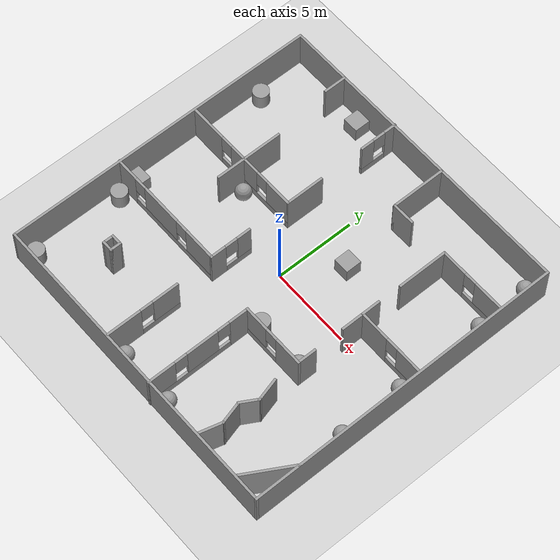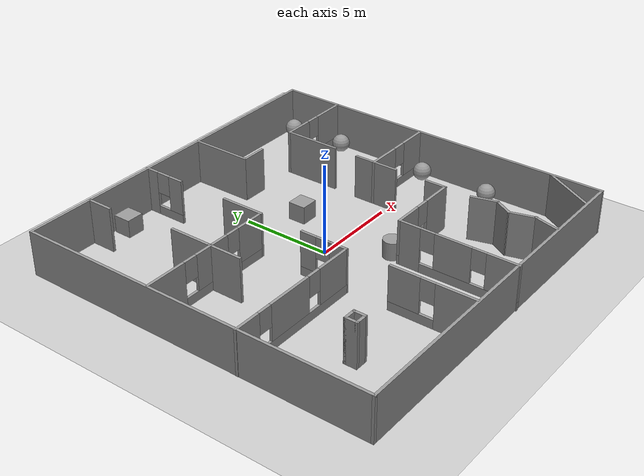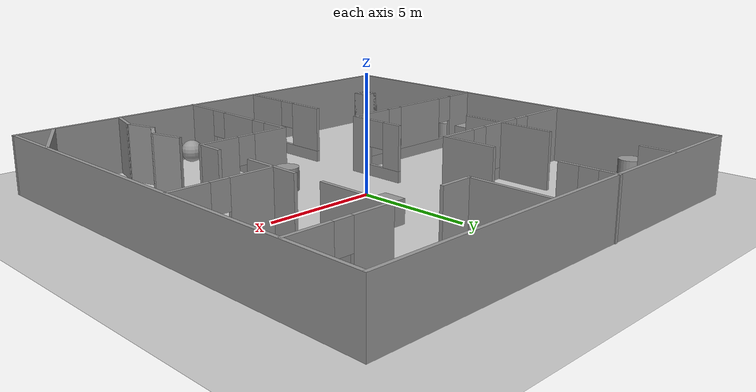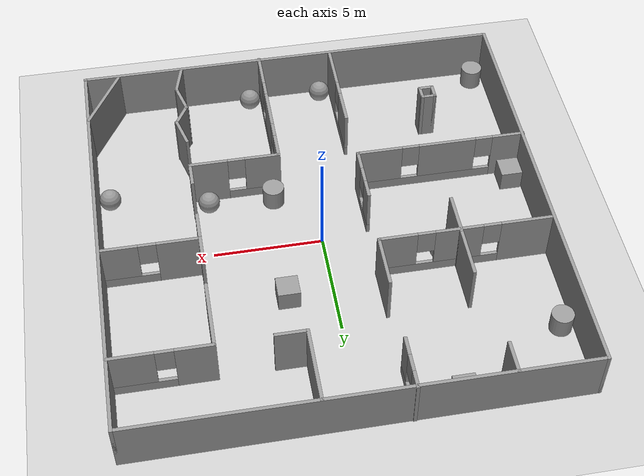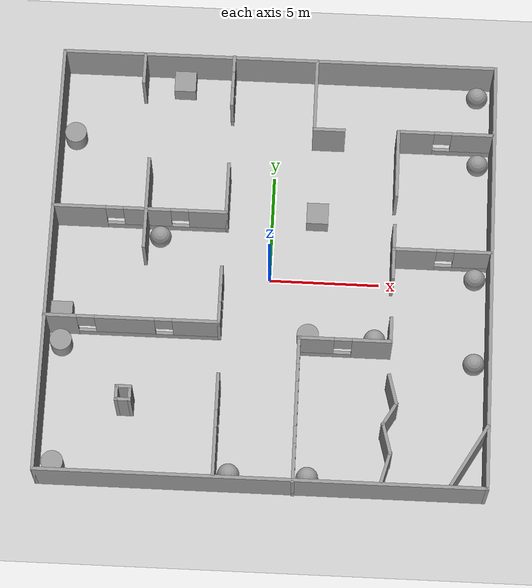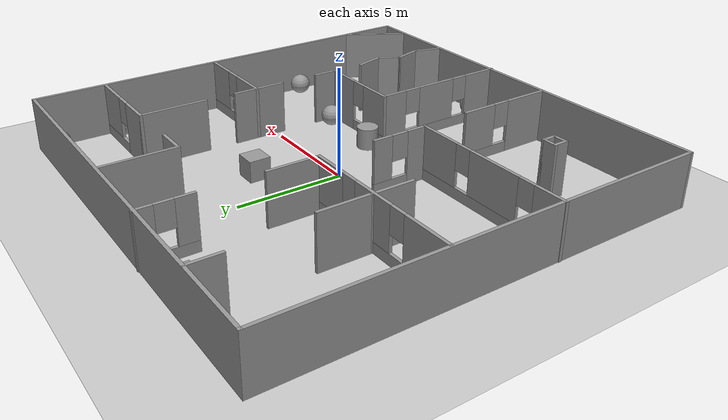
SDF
<sdf version="1.7">
 <world name="default">
  <light name="sun" type="directional">
   <pose>0 0 10 0 -0 0</pose>
   <diffuse>0.8 0.8 0.8 1</diffuse>
   <specular>0.2 0.2 0.2 1</specular>
   <attenuation>
    <range>1000</range>
    <constant>0.9</constant>
    <linear>0.01</linear>
    <quadratic>0.001</quadratic>
   </attenuation>
   <direction>-0.5 0.1 -0.9</direction>
   <spot><inner_angle>0</inner_angle><outer_angle>0</outer_angle><falloff>0</falloff></spot>
  </light>
  <model name="ground_plane">
   <static>1</static>
   <link name="link">
    <collision name="collision">
     <geometry><plane><normal>0 0 1</normal><size>100 100</size></plane></geometry>
     <surface>
      <contact><collide_bitmask>65535</collide_bitmask></contact>
      <friction><ode><mu>100</mu><mu2>50</mu2></ode></friction>
     </surface>
    </collision>
    <visual name="visual">
     <cast_shadows>0</cast_shadows>
     <geometry><plane><normal>0 0 1</normal><size>100 100</size></plane></geometry>
     <material>
      <script><uri>file://media/materials/scripts/gazebo.material</uri><name>Gazebo/Grey</name></script>
     </material>
    </visual>
   </link>
  </model>
  <gravity>0 0 -9.8</gravity>
  <magnetic_field>6e-06 2.3e-05 -4.2e-05</magnetic_field>
  <atmosphere type="adiabatic"/>
  <physics type="ode">
   <max_step_size>0.001</max_step_size>
   <real_time_factor>1</real_time_factor>
   <real_time_update_rate>1000</real_time_update_rate>
  </physics>
  <scene><ambient>0.4 0.4 0.4 1</ambient><background>0.7 0.7 0.7 1</background><shadows>1</shadows></scene>
  <spherical_coordinates>
   <surface_model>EARTH_WGS84</surface_model>
   <latitude_deg>0</latitude_deg>
   <longitude_deg>0</longitude_deg>
   <elevation>0</elevation>
   <heading_deg>0</heading_deg>
  </spherical_coordinates>
  <model name="small_world">
   <pose>-0.011773 -0.005599 0 0 -0 0</pose>
   <link name="Wall_0">
    <collision name="Wall_0_Collision">
     <geometry><box><size>20.15 0.15 2.5</size></box></geometry>
     <pose>0 0 1.25 0 -0 0</pose>
    </collision>
    <visual name="Wall_0_Visual">
     <pose>0 0 1.25 0 -0 0</pose>
     <geometry><box><size>20.15 0.15 2.5</size></box></geometry>
     <material>
      <script><uri>file://media/materials/scripts/gazebo.material</uri><name>Gazebo/Grey</name></script>
      <ambient>1 1 1 1</ambient>
     </material>
     <meta><layer>0</layer></meta>
    </visual>
    <pose>-9.98823 0.005599 0 0 -0 1.5708</pose>
   </link>
   <link name="Wall_15">
    <pose>-6.01526 2.35904 0 0 -0 0</pose>
    <visual name="Wall_15_Visual_0">
     <pose>-2.78466 0 1.25 0 -0 0</pose>
     <geometry><box><size>2.43069 0.15 2.5</size></box></geometry>
     <material>
      <script><uri>file://media/materials/scripts/gazebo.material</uri><name>Gazebo/Grey</name></script>
      <ambient>1 1 1 1</ambient>
     </material>
     <meta><layer>0</layer></meta>
    </visual>
    <collision name="Wall_15_Collision_0">
     <geometry><box><size>2.43069 0.15 2.5</size></box></geometry>
     <pose>-2.78466 0 1.25 0 -0 0</pose>
    </collision>
    <visual name="Wall_15_Visual_1">
     <pose>1.21534 0 0.25 0 -0 0</pose>
     <geometry><box><size>5.56931 0.15 0.5</size></box></geometry>
     <material>
      <script><uri>file://media/materials/scripts/gazebo.material</uri><name>Gazebo/Grey</name></script>
      <ambient>1 1 1 1</ambient>
     </material>
     <meta><layer>0</layer></meta>
    </visual>
    <collision name="Wall_15_Collision_1">
     <geometry><box><size>5.56931 0.15 0.5</size></box></geometry>
     <pose>1.21534 0 0.25 0 -0 0</pose>
    </collision>
    <visual name="Wall_15_Visual_2">
     <pose>0.314312 0 1.5 0 -0 0</pose>
     <geometry><box><size>2.16725 0.15 2</size></box></geometry>
     <material>
      <script><uri>file://media/materials/scripts/gazebo.material</uri><name>Gazebo/Grey</name></script>
      <ambient>1 1 1 1</ambient>
     </material>
     <meta><layer>0</layer></meta>
    </visual>
    <collision name="Wall_15_Collision_2">
     <geometry><box><size>2.16725 0.15 2</size></box></geometry>
     <pose>0.314312 0 1.5 0 -0 0</pose>
    </collision>
    <visual name="Wall_15_Visual_3">
     <pose>3.09897 0 1.5 0 -0 0</pose>
     <geometry><box><size>1.80206 0.15 2</size></box></geometry>
     <material>
      <script><uri>file://media/materials/scripts/gazebo.material</uri><name>Gazebo/Grey</name></script>
      <ambient>1 1 1 1</ambient>
     </material>
     <meta><layer>0</layer></meta>
    </visual>
    <collision name="Wall_15_Collision_3">
     <geometry><box><size>1.80206 0.15 2</size></box></geometry>
     <pose>3.09897 0 1.5 0 -0 0</pose>
    </collision>
    <visual name="Wall_15_Visual_4">
     <pose>-1.16931 0 1.9 0 -0 0</pose>
     <geometry><box><size>0.8 0.15 1.2</size></box></geometry>
     <material>
      <script><uri>file://media/materials/scripts/gazebo.material</uri><name>Gazebo/Grey</name></script>
      <ambient>1 1 1 1</ambient>
     </material>
     <meta><layer>0</layer></meta>
    </visual>
    <collision name="Wall_15_Collision_4">
     <geometry><box><size>0.8 0.15 1.2</size></box></geometry>
     <pose>-1.16931 0 1.9 0 -0 0</pose>
    </collision>
    <visual name="Wall_15_Visual_5">
     <pose>1.79794 0 1.9 0 -0 0</pose>
     <geometry><box><size>0.8 0.15 1.2</size></box></geometry>
     <material>
      <script><uri>file://media/materials/scripts/gazebo.material</uri><name>Gazebo/Grey</name></script>
      <ambient>1 1 1 1</ambient>
     </material>
     <meta><layer>0</layer></meta>
    </visual>
    <collision name="Wall_15_Collision_5">
     <geometry><box><size>0.8 0.15 1.2</size></box></geometry>
     <pose>1.79794 0 1.9 0 -0 0</pose>
    </collision>
   </link>
   <link name="Wall_2">
    <collision name="Wall_2_Collision">
     <geometry><box><size>20.15 0.15 2.5</size></box></geometry>
     <pose>0 0 1.25 0 -0 0</pose>
    </collision>
    <visual name="Wall_2_Visual">
     <pose>0 0 1.25 0 -0 0</pose>
     <geometry><box><size>20.15 0.15 2.5</size></box></geometry>
     <material>
      <script><uri>file://media/materials/scripts/gazebo.material</uri><name>Gazebo/Grey</name></script>
      <ambient>1 1 1 1</ambient>
     </material>
     <meta><layer>0</layer></meta>
    </visual>
    <pose>0.011773 -9.9944 0 0 -0 0</pose>
   </link>
   <link name="Wall_23">
    <collision name="Wall_23_Collision">
     <geometry><box><size>2.5 0.15 2.5</size></box></geometry>
     <pose>0 0 1.25 0 -0 0</pose>
    </collision>
    <visual name="Wall_23_Visual">
     <pose>0 0 1.25 0 -0 0</pose>
     <geometry><box><size>2.5 0.15 2.5</size></box></geometry>
     <material>
      <script><uri>file://media/materials/scripts/gazebo.material</uri><name>Gazebo/Grey</name></script>
      <ambient>1 1 1 1</ambient>
     </material>
     <meta><layer>0</layer></meta>
    </visual>
    <pose>-2.09026 3.53404 0 0 -0 1.5708</pose>
   </link>
   <link name="Wall_27">
    <pose>-2.10973 8.86774 0 0 -0 -1.5708</pose>
    <visual name="Wall_27_Visual_0">
     <pose>-0.836679 0 1.25 0 -0 0</pose>
     <geometry><box><size>0.826642 0.15 2.5</size></box></geometry>
     <material>
      <script><uri>file://media/materials/scripts/gazebo.material</uri><name>Gazebo/Grey</name></script>
      <ambient>1 1 1 1</ambient>
     </material>
     <meta><layer>0</layer></meta>
    </visual>
    <collision name="Wall_27_Collision_0">
     <geometry><box><size>0.826642 0.15 2.5</size></box></geometry>
     <pose>-0.836679 0 1.25 0 -0 0</pose>
    </collision>
    <visual name="Wall_27_Visual_1">
     <pose>0.413321 0 0.25 0 -0 0</pose>
     <geometry><box><size>1.67336 0.15 0.5</size></box></geometry>
     <material>
      <script><uri>file://media/materials/scripts/gazebo.material</uri><name>Gazebo/Grey</name></script>
      <ambient>1 1 1 1</ambient>
     </material>
     <meta><layer>0</layer></meta>
    </visual>
    <collision name="Wall_27_Collision_1">
     <geometry><box><size>1.67336 0.15 0.5</size></box></geometry>
     <pose>0.413321 0 0.25 0 -0 0</pose>
    </collision>
    <visual name="Wall_27_Visual_2">
     <pose>0.813321 0 1.5 0 -0 0</pose>
     <geometry><box><size>0.873358 0.15 2</size></box></geometry>
     <material>
      <script><uri>file://media/materials/scripts/gazebo.material</uri><name>Gazebo/Grey</name></script>
      <ambient>1 1 1 1</ambient>
     </material>
     <meta><layer>0</layer></meta>
    </visual>
    <collision name="Wall_27_Collision_2">
     <geometry><box><size>0.873358 0.15 2</size></box></geometry>
     <pose>0.813321 0 1.5 0 -0 0</pose>
    </collision>
    <visual name="Wall_27_Visual_3">
     <pose>-0.023358 0 1.9 0 -0 0</pose>
     <geometry><box><size>0.8 0.15 1.2</size></box></geometry>
     <material>
      <script><uri>file://media/materials/scripts/gazebo.material</uri><name>Gazebo/Grey</name></script>
      <ambient>1 1 1 1</ambient>
     </material>
     <meta><layer>0</layer></meta>
    </visual>
    <collision name="Wall_27_Collision_3">
     <geometry><box><size>0.8 0.15 1.2</size></box></geometry>
     <pose>-0.023358 0 1.9 0 -0 0</pose>
    </collision>
   </link>
   <link name="Wall_29">
    <collision name="Wall_29_Collision">
     <geometry><box><size>1.5 0.15 2.5</size></box></geometry>
     <pose>0 0 1.25 0 -0 0</pose>
    </collision>
    <visual name="Wall_29_Visual">
     <pose>0 0 1.25 0 -0 0</pose>
     <geometry><box><size>1.5 0.15 2.5</size></box></geometry>
     <material>
      <script><uri>file://media/materials/scripts/gazebo.material</uri><name>Gazebo/Grey</name></script>
      <ambient>1 1 1 1</ambient>
     </material>
     <meta><layer>0</layer></meta>
    </visual>
    <pose>-6.23628 9.30174 0 0 -0 -1.5708</pose>
   </link>
   <link name="Wall_31">
    <collision name="Wall_31_Collision">
     <geometry><box><size>2.5 0.15 2.5</size></box></geometry>
     <pose>0 0 1.25 0 -0 0</pose>
    </collision>
    <visual name="Wall_31_Visual">
     <pose>0 0 1.25 0 -0 0</pose>
     <geometry><box><size>2.5 0.15 2.5</size></box></geometry>
     <material>
      <script><uri>file://media/materials/scripts/gazebo.material</uri><name>Gazebo/Grey</name></script>
      <ambient>1 1 1 1</ambient>
     </material>
     <meta><layer>0</layer></meta>
    </visual>
    <pose>-5.74683 3.61125 0 0 -0 1.5708</pose>
   </link>
   <link name="Wall_33">
    <pose>-6.08677 -2.88589 0 0 -0 0</pose>
    <visual name="Wall_33_Visual_0">
     <pose>-3.23107 0 1.25 0 -0 0</pose>
     <geometry><box><size>1.53787 0.15 2.5</size></box></geometry>
     <material>
      <script><uri>file://media/materials/scripts/gazebo.material</uri><name>Gazebo/Grey</name></script>
      <ambient>1 1 1 1</ambient>
     </material>
     <meta><layer>0</layer></meta>
    </visual>
    <collision name="Wall_33_Collision_0">
     <geometry><box><size>1.53787 0.15 2.5</size></box></geometry>
     <pose>-3.23107 0 1.25 0 -0 0</pose>
    </collision>
    <visual name="Wall_33_Visual_1">
     <pose>0.768933 0 0.25 0 -0 0</pose>
     <geometry><box><size>6.46213 0.15 0.5</size></box></geometry>
     <material>
      <script><uri>file://media/materials/scripts/gazebo.material</uri><name>Gazebo/Grey</name></script>
      <ambient>1 1 1 1</ambient>
     </material>
     <meta><layer>0</layer></meta>
    </visual>
    <collision name="Wall_33_Collision_1">
     <geometry><box><size>6.46213 0.15 0.5</size></box></geometry>
     <pose>0.768933 0 0.25 0 -0 0</pose>
    </collision>
    <visual name="Wall_33_Visual_2">
     <pose>-0.314134 0 1.5 0 -0 0</pose>
     <geometry><box><size>2.696 0.15 2</size></box></geometry>
     <material>
      <script><uri>file://media/materials/scripts/gazebo.material</uri><name>Gazebo/Grey</name></script>
      <ambient>1 1 1 1</ambient>
     </material>
     <meta><layer>0</layer></meta>
    </visual>
    <collision name="Wall_33_Collision_2">
     <geometry><box><size>2.696 0.15 2</size></box></geometry>
     <pose>-0.314134 0 1.5 0 -0 0</pose>
    </collision>
    <visual name="Wall_33_Visual_3">
     <pose>2.91693 0 1.5 0 -0 0</pose>
     <geometry><box><size>2.16613 0.15 2</size></box></geometry>
     <material>
      <script><uri>file://media/materials/scripts/gazebo.material</uri><name>Gazebo/Grey</name></script>
      <ambient>1 1 1 1</ambient>
     </material>
     <meta><layer>0</layer></meta>
    </visual>
    <collision name="Wall_33_Collision_3">
     <geometry><box><size>2.16613 0.15 2</size></box></geometry>
     <pose>2.91693 0 1.5 0 -0 0</pose>
    </collision>
    <visual name="Wall_33_Visual_4">
     <pose>-2.06213 0 1.9 0 -0 0</pose>
     <geometry><box><size>0.8 0.15 1.2</size></box></geometry>
     <material>
      <script><uri>file://media/materials/scripts/gazebo.material</uri><name>Gazebo/Grey</name></script>
      <ambient>1 1 1 1</ambient>
     </material>
     <meta><layer>0</layer></meta>
    </visual>
    <collision name="Wall_33_Collision_4">
     <geometry><box><size>0.8 0.15 1.2</size></box></geometry>
     <pose>-2.06213 0 1.9 0 -0 0</pose>
    </collision>
    <visual name="Wall_33_Visual_5">
     <pose>1.43387 0 1.9 0 -0 0</pose>
     <geometry><box><size>0.8 0.15 1.2</size></box></geometry>
     <material>
      <script><uri>file://media/materials/scripts/gazebo.material</uri><name>Gazebo/Grey</name></script>
      <ambient>1 1 1 1</ambient>
     </material>
     <meta><layer>0</layer></meta>
    </visual>
    <collision name="Wall_33_Collision_5">
     <geometry><box><size>0.8 0.15 1.2</size></box></geometry>
     <pose>1.43387 0 1.9 0 -0 0</pose>
    </collision>
   </link>
   <link name="Wall_34">
    <pose>-2.16177 -1.58589 0 0 -0 1.5708</pose>
    <visual name="Wall_34_Visual_0">
     <pose>-0.864515 0 1.25 0 -0 0</pose>
     <geometry><box><size>1.02097 0.15 2.5</size></box></geometry>
     <material>
      <script><uri>file://media/materials/scripts/gazebo.material</uri><name>Gazebo/Grey</name></script>
      <ambient>1 1 1 1</ambient>
     </material>
     <meta><layer>0</layer></meta>
    </visual>
    <collision name="Wall_34_Collision_0">
     <geometry><box><size>1.02097 0.15 2.5</size></box></geometry>
     <pose>-0.864515 0 1.25 0 -0 0</pose>
    </collision>
    <visual name="Wall_34_Visual_1">
     <pose>0.510485 0 0.25 0 -0 0</pose>
     <geometry><box><size>1.72903 0.15 0.5</size></box></geometry>
     <material>
      <script><uri>file://media/materials/scripts/gazebo.material</uri><name>Gazebo/Grey</name></script>
      <ambient>1 1 1 1</ambient>
     </material>
     <meta><layer>0</layer></meta>
    </visual>
    <collision name="Wall_34_Collision_1">
     <geometry><box><size>1.72903 0.15 0.5</size></box></geometry>
     <pose>0.510485 0 0.25 0 -0 0</pose>
    </collision>
    <visual name="Wall_34_Visual_2">
     <pose>0.910485 0 1.5 0 -0 0</pose>
     <geometry><box><size>0.92903 0.15 2</size></box></geometry>
     <material>
      <script><uri>file://media/materials/scripts/gazebo.material</uri><name>Gazebo/Grey</name></script>
      <ambient>1 1 1 1</ambient>
     </material>
     <meta><layer>0</layer></meta>
    </visual>
    <collision name="Wall_34_Collision_2">
     <geometry><box><size>0.92903 0.15 2</size></box></geometry>
     <pose>0.910485 0 1.5 0 -0 0</pose>
    </collision>
    <visual name="Wall_34_Visual_3">
     <pose>0.04597 0 1.9 0 -0 0</pose>
     <geometry><box><size>0.8 0.15 1.2</size></box></geometry>
     <material>
      <script><uri>file://media/materials/scripts/gazebo.material</uri><name>Gazebo/Grey</name></script>
      <ambient>1 1 1 1</ambient>
     </material>
     <meta><layer>0</layer></meta>
    </visual>
    <collision name="Wall_34_Collision_3">
     <geometry><box><size>0.8 0.15 1.2</size></box></geometry>
     <pose>0.04597 0 1.9 0 -0 0</pose>
    </collision>
   </link>
   <link name="Wall_37">
    <pose>-2.05329 -7.61819 0 0 -0 1.5708</pose>
    <visual name="Wall_37_Visual_0">
     <pose>-1.26069 0 1.25 0 -0 0</pose>
     <geometry><box><size>2.22862 0.15 2.5</size></box></geometry>
     <material>
      <script><uri>file://media/materials/scripts/gazebo.material</uri><name>Gazebo/Grey</name></script>
      <ambient>1 1 1 1</ambient>
     </material>
     <meta><layer>0</layer></meta>
    </visual>
    <collision name="Wall_37_Collision_0">
     <geometry><box><size>2.22862 0.15 2.5</size></box></geometry>
     <pose>-1.26069 0 1.25 0 -0 0</pose>
    </collision>
    <visual name="Wall_37_Visual_1">
     <pose>1.11431 0 0.25 0 -0 0</pose>
     <geometry><box><size>2.52138 0.15 0.5</size></box></geometry>
     <material>
      <script><uri>file://media/materials/scripts/gazebo.material</uri><name>Gazebo/Grey</name></script>
      <ambient>1 1 1 1</ambient>
     </material>
     <meta><layer>0</layer></meta>
    </visual>
    <collision name="Wall_37_Collision_1">
     <geometry><box><size>2.52138 0.15 0.5</size></box></geometry>
     <pose>1.11431 0 0.25 0 -0 0</pose>
    </collision>
    <visual name="Wall_37_Visual_2">
     <pose>1.51431 0 1.5 0 -0 0</pose>
     <geometry><box><size>1.72138 0.15 2</size></box></geometry>
     <material>
      <script><uri>file://media/materials/scripts/gazebo.material</uri><name>Gazebo/Grey</name></script>
      <ambient>1 1 1 1</ambient>
     </material>
     <meta><layer>0</layer></meta>
    </visual>
    <collision name="Wall_37_Collision_2">
     <geometry><box><size>1.72138 0.15 2</size></box></geometry>
     <pose>1.51431 0 1.5 0 -0 0</pose>
    </collision>
    <visual name="Wall_37_Visual_3">
     <pose>0.253619 0 1.9 0 -0 0</pose>
     <geometry><box><size>0.8 0.15 1.2</size></box></geometry>
     <material>
      <script><uri>file://media/materials/scripts/gazebo.material</uri><name>Gazebo/Grey</name></script>
      <ambient>1 1 1 1</ambient>
     </material>
     <meta><layer>0</layer></meta>
    </visual>
    <collision name="Wall_37_Collision_3">
     <geometry><box><size>0.8 0.15 1.2</size></box></geometry>
     <pose>0.253619 0 1.9 0 -0 0</pose>
    </collision>
   </link>
   <link name="Wall_4">
    <collision name="Wall_4_Collision">
     <geometry><box><size>20.15 0.15 2.5</size></box></geometry>
     <pose>0 0 1.25 0 -0 0</pose>
    </collision>
    <visual name="Wall_4_Visual">
     <pose>0 0 1.25 0 -0 0</pose>
     <geometry><box><size>20.15 0.15 2.5</size></box></geometry>
     <material>
      <script><uri>file://media/materials/scripts/gazebo.material</uri><name>Gazebo/Grey</name></script>
      <ambient>1 1 1 1</ambient>
     </material>
     <meta><layer>0</layer></meta>
    </visual>
    <pose>0.011773 10.0056 0 0 -0 0</pose>
   </link>
   <link name="Wall_40">
    <collision name="Wall_40_Collision">
     <geometry><box><size>2 0.15 2.5</size></box></geometry>
     <pose>0 0 1.25 0 -0 0</pose>
    </collision>
    <visual name="Wall_40_Visual">
     <pose>0 0 1.25 0 -0 0</pose>
     <geometry><box><size>2 0.15 2.5</size></box></geometry>
     <material>
      <script><uri>file://media/materials/scripts/gazebo.material</uri><name>Gazebo/Grey</name></script>
      <ambient>1 1 1 1</ambient>
     </material>
     <meta><layer>0</layer></meta>
    </visual>
    <pose>-5.74683 1.51125 0 0 -0 -1.5708</pose>
   </link>
   <link name="Wall_46">
    <collision name="Wall_46_Collision">
     <geometry><box><size>3.5 0.15 2.5</size></box></geometry>
     <pose>0 0 1.25 0 -0 0</pose>
    </collision>
    <visual name="Wall_46_Visual">
     <pose>0 0 1.25 0 -0 0</pose>
     <geometry><box><size>3.5 0.15 2.5</size></box></geometry>
     <material>
      <script><uri>file://media/materials/scripts/gazebo.material</uri><name>Gazebo/Grey</name></script>
      <ambient>1 1 1 1</ambient>
     </material>
     <meta><layer>0</layer></meta>
    </visual>
    <pose>1.74213 8.29456 0 0 -0 -1.5708</pose>
   </link>
   <link name="Wall_48">
    <collision name="Wall_48_Collision">
     <geometry><box><size>1.5 0.15 2.5</size></box></geometry>
     <pose>0 0 1.25 0 -0 0</pose>
    </collision>
    <visual name="Wall_48_Visual">
     <pose>0 0 1.25 0 -0 0</pose>
     <geometry><box><size>1.5 0.15 2.5</size></box></geometry>
     <material>
      <script><uri>file://media/materials/scripts/gazebo.material</uri><name>Gazebo/Grey</name></script>
      <ambient>1 1 1 1</ambient>
     </material>
     <meta><layer>0</layer></meta>
    </visual>
    <pose>2.41713 6.61956 0 0 -0 0</pose>
   </link>
   <link name="Wall_50">
    <pose>7.78713 6.66956 0 0 -0 0</pose>
    <visual name="Wall_50_Visual_0">
     <pose>-1.38813 0 1.25 0 -0 0</pose>
     <geometry><box><size>1.72373 0.15 2.5</size></box></geometry>
     <material>
      <script><uri>file://media/materials/scripts/gazebo.material</uri><name>Gazebo/Grey</name></script>
      <ambient>1 1 1 1</ambient>
     </material>
     <meta><layer>0</layer></meta>
    </visual>
    <collision name="Wall_50_Collision_0">
     <geometry><box><size>1.72373 0.15 2.5</size></box></geometry>
     <pose>-1.38813 0 1.25 0 -0 0</pose>
    </collision>
    <visual name="Wall_50_Visual_1">
     <pose>0.861866 0 0.25 0 -0 0</pose>
     <geometry><box><size>2.77627 0.15 0.5</size></box></geometry>
     <material>
      <script><uri>file://media/materials/scripts/gazebo.material</uri><name>Gazebo/Grey</name></script>
      <ambient>1 1 1 1</ambient>
     </material>
     <meta><layer>0</layer></meta>
    </visual>
    <collision name="Wall_50_Collision_1">
     <geometry><box><size>2.77627 0.15 0.5</size></box></geometry>
     <pose>0.861866 0 0.25 0 -0 0</pose>
    </collision>
    <visual name="Wall_50_Visual_2">
     <pose>1.26187 0 1.5 0 -0 0</pose>
     <geometry><box><size>1.97627 0.15 2</size></box></geometry>
     <material>
      <script><uri>file://media/materials/scripts/gazebo.material</uri><name>Gazebo/Grey</name></script>
      <ambient>1 1 1 1</ambient>
     </material>
     <meta><layer>0</layer></meta>
    </visual>
    <collision name="Wall_50_Collision_2">
     <geometry><box><size>1.97627 0.15 2</size></box></geometry>
     <pose>1.26187 0 1.5 0 -0 0</pose>
    </collision>
    <visual name="Wall_50_Visual_3">
     <pose>-0.126269 0 1.9 0 -0 0</pose>
     <geometry><box><size>0.8 0.15 1.2</size></box></geometry>
     <material>
      <script><uri>file://media/materials/scripts/gazebo.material</uri><name>Gazebo/Grey</name></script>
      <ambient>1 1 1 1</ambient>
     </material>
     <meta><layer>0</layer></meta>
    </visual>
    <collision name="Wall_50_Collision_3">
     <geometry><box><size>0.8 0.15 1.2</size></box></geometry>
     <pose>-0.126269 0 1.9 0 -0 0</pose>
    </collision>
   </link>
   <link name="Wall_52">
    <collision name="Wall_52_Collision">
     <geometry><box><size>3.25 0.15 2.5</size></box></geometry>
     <pose>0 0 1.25 0 -0 0</pose>
    </collision>
    <visual name="Wall_52_Visual">
     <pose>0 0 1.25 0 -0 0</pose>
     <geometry><box><size>3.25 0.15 2.5</size></box></geometry>
     <material>
      <script><uri>file://media/materials/scripts/gazebo.material</uri><name>Gazebo/Grey</name></script>
      <ambient>1 1 1 1</ambient>
     </material>
     <meta><layer>0</layer></meta>
    </visual>
    <pose>5.61213 5.11956 0 0 -0 -1.5708</pose>
   </link>
   <link name="Wall_57">
    <collision name="Wall_57_Collision">
     <geometry><box><size>1.25 0.15 2.5</size></box></geometry>
     <pose>0 0 1.25 0 -0 0</pose>
    </collision>
    <visual name="Wall_57_Visual">
     <pose>0 0 1.25 0 -0 0</pose>
     <geometry><box><size>1.25 0.15 2.5</size></box></geometry>
     <material>
      <script><uri>file://media/materials/scripts/gazebo.material</uri><name>Gazebo/Grey</name></script>
      <ambient>1 1 1 1</ambient>
     </material>
     <meta><layer>0</layer></meta>
    </visual>
    <pose>5.57736 1.50488 0 0 -0 -1.5708</pose>
   </link>
   <link name="Wall_58">
    <pose>7.75236 0.954877 0 0 -0 0</pose>
    <visual name="Wall_58_Visual_0">
     <pose>-1.24832 0 1.25 0 -0 0</pose>
     <geometry><box><size>2.00337 0.15 2.5</size></box></geometry>
     <material>
      <script><uri>file://media/materials/scripts/gazebo.material</uri><name>Gazebo/Grey</name></script>
      <ambient>1 1 1 1</ambient>
     </material>
     <meta><layer>0</layer></meta>
    </visual>
    <collision name="Wall_58_Collision_0">
     <geometry><box><size>2.00337 0.15 2.5</size></box></geometry>
     <pose>-1.24832 0 1.25 0 -0 0</pose>
    </collision>
    <visual name="Wall_58_Visual_1">
     <pose>1.00168 0 0.25 0 -0 0</pose>
     <geometry><box><size>2.49663 0.15 0.5</size></box></geometry>
     <material>
      <script><uri>file://media/materials/scripts/gazebo.material</uri><name>Gazebo/Grey</name></script>
      <ambient>1 1 1 1</ambient>
     </material>
     <meta><layer>0</layer></meta>
    </visual>
    <collision name="Wall_58_Collision_1">
     <geometry><box><size>2.49663 0.15 0.5</size></box></geometry>
     <pose>1.00168 0 0.25 0 -0 0</pose>
    </collision>
    <visual name="Wall_58_Visual_2">
     <pose>1.40168 0 1.5 0 -0 0</pose>
     <geometry><box><size>1.69663 0.15 2</size></box></geometry>
     <material>
      <script><uri>file://media/materials/scripts/gazebo.material</uri><name>Gazebo/Grey</name></script>
      <ambient>1 1 1 1</ambient>
     </material>
     <meta><layer>0</layer></meta>
    </visual>
    <collision name="Wall_58_Collision_2">
     <geometry><box><size>1.69663 0.15 2</size></box></geometry>
     <pose>1.40168 0 1.5 0 -0 0</pose>
    </collision>
    <visual name="Wall_58_Visual_3">
     <pose>0.153368 0 1.9 0 -0 0</pose>
     <geometry><box><size>0.8 0.15 1.2</size></box></geometry>
     <material>
      <script><uri>file://media/materials/scripts/gazebo.material</uri><name>Gazebo/Grey</name></script>
      <ambient>1 1 1 1</ambient>
     </material>
     <meta><layer>0</layer></meta>
    </visual>
    <collision name="Wall_58_Collision_3">
     <geometry><box><size>0.8 0.15 1.2</size></box></geometry>
     <pose>0.153368 0 1.9 0 -0 0</pose>
    </collision>
   </link>
   <link name="Wall_6">
    <collision name="Wall_6_Collision">
     <geometry><box><size>20.15 0.15 2.5</size></box></geometry>
     <pose>0 0 1.25 0 -0 0</pose>
    </collision>
    <visual name="Wall_6_Visual">
     <pose>0 0 1.25 0 -0 0</pose>
     <geometry><box><size>20.15 0.15 2.5</size></box></geometry>
     <material>
      <script><uri>file://media/materials/scripts/gazebo.material</uri><name>Gazebo/Grey</name></script>
      <ambient>1 1 1 1</ambient>
     </material>
     <meta><layer>0</layer></meta>
    </visual>
    <pose>10.0118 0.005599 0 0 -0 -1.5708</pose>
   </link>
   <link name="Wall_62">
    <collision name="Wall_62_Collision">
     <geometry><box><size>1.5 0.15 2.5</size></box></geometry>
     <pose>0 0 1.25 0 -0 0</pose>
    </collision>
    <visual name="Wall_62_Visual">
     <pose>0 0 1.25 0 -0 0</pose>
     <geometry><box><size>1.5 0.15 2.5</size></box></geometry>
     <material>
      <script><uri>file://media/materials/scripts/gazebo.material</uri><name>Gazebo/Grey</name></script>
      <ambient>1 1 1 1</ambient>
     </material>
     <meta><layer>0</layer></meta>
    </visual>
    <pose>5.57736 0.279877 0 0 -0 -1.5708</pose>
   </link>
   <link name="Wall_66">
    <collision name="Wall_66_Collision">
     <geometry><box><size>1.25 0.15 2.5</size></box></geometry>
     <pose>0 0 1.25 0 -0 0</pose>
    </collision>
    <visual name="Wall_66_Visual">
     <pose>0 0 1.25 0 -0 0</pose>
     <geometry><box><size>1.25 0.15 2.5</size></box></geometry>
     <material>
      <script><uri>file://media/materials/scripts/gazebo.material</uri><name>Gazebo/Grey</name></script>
      <ambient>1 1 1 1</ambient>
     </material>
     <meta><layer>0</layer></meta>
    </visual>
    <pose>5.56946 -2.89274 0 0 -0 -1.5708</pose>
   </link>
   <link name="Wall_67">
    <pose>3.51946 -3.44274 0 0 -0 3.14159</pose>
    <visual name="Wall_67_Visual_0">
     <pose>-1.22432 0 1.25 0 -0 0</pose>
     <geometry><box><size>1.80137 0.15 2.5</size></box></geometry>
     <material>
      <script><uri>file://media/materials/scripts/gazebo.material</uri><name>Gazebo/Grey</name></script>
      <ambient>1 1 1 1</ambient>
     </material>
     <meta><layer>0</layer></meta>
    </visual>
    <collision name="Wall_67_Collision_0">
     <geometry><box><size>1.80137 0.15 2.5</size></box></geometry>
     <pose>-1.22432 0 1.25 0 -0 0</pose>
    </collision>
    <visual name="Wall_67_Visual_1">
     <pose>0.900683 0 0.25 0 -0 0</pose>
     <geometry><box><size>2.44863 0.15 0.5</size></box></geometry>
     <material>
      <script><uri>file://media/materials/scripts/gazebo.material</uri><name>Gazebo/Grey</name></script>
      <ambient>1 1 1 1</ambient>
     </material>
     <meta><layer>0</layer></meta>
    </visual>
    <collision name="Wall_67_Collision_1">
     <geometry><box><size>2.44863 0.15 0.5</size></box></geometry>
     <pose>0.900683 0 0.25 0 -0 0</pose>
    </collision>
    <visual name="Wall_67_Visual_2">
     <pose>1.30068 0 1.5 0 -0 0</pose>
     <geometry><box><size>1.64863 0.15 2</size></box></geometry>
     <material>
      <script><uri>file://media/materials/scripts/gazebo.material</uri><name>Gazebo/Grey</name></script>
      <ambient>1 1 1 1</ambient>
     </material>
     <meta><layer>0</layer></meta>
    </visual>
    <collision name="Wall_67_Collision_2">
     <geometry><box><size>1.64863 0.15 2</size></box></geometry>
     <pose>1.30068 0 1.5 0 -0 0</pose>
    </collision>
    <visual name="Wall_67_Visual_3">
     <pose>0.076366 0 1.9 0 -0 0</pose>
     <geometry><box><size>0.8 0.15 1.2</size></box></geometry>
     <material>
      <script><uri>file://media/materials/scripts/gazebo.material</uri><name>Gazebo/Grey</name></script>
      <ambient>1 1 1 1</ambient>
     </material>
     <meta><layer>0</layer></meta>
    </visual>
    <collision name="Wall_67_Collision_3">
     <geometry><box><size>0.8 0.15 1.2</size></box></geometry>
     <pose>0.076366 0 1.9 0 -0 0</pose>
    </collision>
   </link>
   <link name="Wall_70">
    <pose>1.46946 -6.74274 0 0 -0 -1.5708</pose>
    <visual name="Wall_70_Visual_0">
     <pose>-2.71974 0 1.25 0 -0 0</pose>
     <geometry><box><size>1.31051 0.15 2.5</size></box></geometry>
     <material>
      <script><uri>file://media/materials/scripts/gazebo.material</uri><name>Gazebo/Grey</name></script>
      <ambient>1 1 1 1</ambient>
     </material>
     <meta><layer>0</layer></meta>
    </visual>
    <collision name="Wall_70_Collision_0">
     <geometry><box><size>1.31051 0.15 2.5</size></box></geometry>
     <pose>-2.71974 0 1.25 0 -0 0</pose>
    </collision>
    <visual name="Wall_70_Visual_1">
     <pose>0.655256 0 0.25 0 -0 0</pose>
     <geometry><box><size>5.43949 0.15 0.5</size></box></geometry>
     <material>
      <script><uri>file://media/materials/scripts/gazebo.material</uri><name>Gazebo/Grey</name></script>
      <ambient>1 1 1 1</ambient>
     </material>
     <meta><layer>0</layer></meta>
    </visual>
    <collision name="Wall_70_Collision_1">
     <geometry><box><size>5.43949 0.15 0.5</size></box></geometry>
     <pose>0.655256 0 0.25 0 -0 0</pose>
    </collision>
    <visual name="Wall_70_Visual_2">
     <pose>-0.238489 0 1.5 0 -0 0</pose>
     <geometry><box><size>2.052 0.15 2</size></box></geometry>
     <material>
      <script><uri>file://media/materials/scripts/gazebo.material</uri><name>Gazebo/Grey</name></script>
      <ambient>1 1 1 1</ambient>
     </material>
     <meta><layer>0</layer></meta>
    </visual>
    <collision name="Wall_70_Collision_2">
     <geometry><box><size>2.052 0.15 2</size></box></geometry>
     <pose>-0.238489 0 1.5 0 -0 0</pose>
    </collision>
    <visual name="Wall_70_Visual_3">
     <pose>2.48126 0 1.5 0 -0 0</pose>
     <geometry><box><size>1.78749 0.15 2</size></box></geometry>
     <material>
      <script><uri>file://media/materials/scripts/gazebo.material</uri><name>Gazebo/Grey</name></script>
      <ambient>1 1 1 1</ambient>
     </material>
     <meta><layer>0</layer></meta>
    </visual>
    <collision name="Wall_70_Collision_3">
     <geometry><box><size>1.78749 0.15 2</size></box></geometry>
     <pose>2.48126 0 1.5 0 -0 0</pose>
    </collision>
    <visual name="Wall_70_Visual_4">
     <pose>-1.66449 0 1.9 0 -0 0</pose>
     <geometry><box><size>0.8 0.15 1.2</size></box></geometry>
     <material>
      <script><uri>file://media/materials/scripts/gazebo.material</uri><name>Gazebo/Grey</name></script>
      <ambient>1 1 1 1</ambient>
     </material>
     <meta><layer>0</layer></meta>
    </visual>
    <collision name="Wall_70_Collision_4">
     <geometry><box><size>0.8 0.15 1.2</size></box></geometry>
     <pose>-1.66449 0 1.9 0 -0 0</pose>
    </collision>
    <visual name="Wall_70_Visual_5">
     <pose>1.18751 0 1.9 0 -0 0</pose>
     <geometry><box><size>0.8 0.15 1.2</size></box></geometry>
     <material>
      <script><uri>file://media/materials/scripts/gazebo.material</uri><name>Gazebo/Grey</name></script>
      <ambient>1 1 1 1</ambient>
     </material>
     <meta><layer>0</layer></meta>
    </visual>
    <collision name="Wall_70_Collision_5">
     <geometry><box><size>0.8 0.15 1.2</size></box></geometry>
     <pose>1.18751 0 1.9 0 -0 0</pose>
    </collision>
   </link>
   <link name="Wall_74">
    <collision name="Wall_74_Collision">
     <geometry><box><size>1.5 0.15 2.5</size></box></geometry>
     <pose>0 0 1.25 0 -0 0</pose>
    </collision>
    <visual name="Wall_74_Visual">
     <pose>0 0 1.25 0 -0 0</pose>
     <geometry><box><size>1.5 0.15 2.5</size></box></geometry>
     <material>
      <script><uri>file://media/materials/scripts/gazebo.material</uri><name>Gazebo/Grey</name></script>
      <ambient>1 1 1 1</ambient>
     </material>
     <meta><layer>0</layer></meta>
    </visual>
    <pose>5.72289 -5.66775 0 0 -0 -1.309</pose>
   </link>
   <link name="Wall_75">
    <collision name="Wall_75_Collision">
     <geometry><box><size>1.25 0.15 2.5</size></box></geometry>
     <pose>0 0 1.25 0 -0 0</pose>
    </collision>
    <visual name="Wall_75_Visual">
     <pose>0 0 1.25 0 -0 0</pose>
     <geometry><box><size>1.25 0.15 2.5</size></box></geometry>
     <material>
      <script><uri>file://media/materials/scripts/gazebo.material</uri><name>Gazebo/Grey</name></script>
      <ambient>1 1 1 1</ambient>
     </material>
     <meta><layer>0</layer></meta>
    </visual>
    <pose>5.6226 -6.79607 0 0 -0 -2.0944</pose>
   </link>
   <link name="Wall_76">
    <collision name="Wall_76_Collision">
     <geometry><box><size>1.5 0.15 2.5</size></box></geometry>
     <pose>0 0 1.25 0 -0 0</pose>
    </collision>
    <visual name="Wall_76_Visual">
     <pose>0 0 1.25 0 -0 0</pose>
     <geometry><box><size>1.5 0.15 2.5</size></box></geometry>
     <material>
      <script><uri>file://media/materials/scripts/gazebo.material</uri><name>Gazebo/Grey</name></script>
      <ambient>1 1 1 1</ambient>
     </material>
     <meta><layer>0</layer></meta>
    </visual>
    <pose>5.5223 -7.92438 0 0 -0 -1.309</pose>
   </link>
   <link name="Wall_78">
    <collision name="Wall_78_Collision">
     <geometry><box><size>1.5 0.15 2.5</size></box></geometry>
     <pose>0 0 1.25 0 -0 0</pose>
    </collision>
    <visual name="Wall_78_Visual">
     <pose>0 0 1.25 0 -0 0</pose>
     <geometry><box><size>1.5 0.15 2.5</size></box></geometry>
     <material>
      <script><uri>file://media/materials/scripts/gazebo.material</uri><name>Gazebo/Grey</name></script>
      <ambient>1 1 1 1</ambient>
     </material>
     <meta><layer>0</layer></meta>
    </visual>
    <pose>5.5223 -9.22838 0 0 -0 -1.8326</pose>
   </link>
   <link name="Wall_80">
    <collision name="Wall_80_Collision">
     <geometry><box><size>0.75 0.15 2.5</size></box></geometry>
     <pose>0 0 1.25 0 -0 0</pose>
    </collision>
    <visual name="Wall_80_Visual">
     <pose>0 0 1.25 0 -0 0</pose>
     <geometry><box><size>0.75 0.15 2.5</size></box></geometry>
     <material>
      <script><uri>file://media/materials/scripts/gazebo.material</uri><name>Gazebo/Grey</name></script>
      <ambient>1 1 1 1</ambient>
     </material>
     <meta><layer>0</layer></meta>
    </visual>
    <pose>-6.53089 -6.36475 0 0 -0 -1.5708</pose>
   </link>
   <link name="Wall_81">
    <collision name="Wall_81_Collision">
     <geometry><box><size>0.75 0.15 2.5</size></box></geometry>
     <pose>0 0 1.25 0 -0 0</pose>
    </collision>
    <visual name="Wall_81_Visual">
     <pose>0 0 1.25 0 -0 0</pose>
     <geometry><box><size>0.75 0.15 2.5</size></box></geometry>
     <material>
      <script><uri>file://media/materials/scripts/gazebo.material</uri><name>Gazebo/Grey</name></script>
      <ambient>1 1 1 1</ambient>
     </material>
     <meta><layer>0</layer></meta>
    </visual>
    <pose>-6.23089 -6.66474 0 0 -0 0</pose>
   </link>
   <link name="Wall_82">
    <collision name="Wall_82_Collision">
     <geometry><box><size>0.75 0.15 2.5</size></box></geometry>
     <pose>0 0 1.25 0 -0 0</pose>
    </collision>
    <visual name="Wall_82_Visual">
     <pose>0 0 1.25 0 -0 0</pose>
     <geometry><box><size>0.75 0.15 2.5</size></box></geometry>
     <material>
      <script><uri>file://media/materials/scripts/gazebo.material</uri><name>Gazebo/Grey</name></script>
      <ambient>1 1 1 1</ambient>
     </material>
     <meta><layer>0</layer></meta>
    </visual>
    <pose>-5.93089 -6.36475 0 0 -0 1.5708</pose>
   </link>
   <link name="Wall_83">
    <collision name="Wall_83_Collision">
     <geometry><box><size>0.75 0.15 2.5</size></box></geometry>
     <pose>0 0 1.25 0 -0 0</pose>
    </collision>
    <visual name="Wall_83_Visual">
     <pose>0 0 1.25 0 -0 0</pose>
     <geometry><box><size>0.75 0.15 2.5</size></box></geometry>
     <material>
      <script><uri>file://media/materials/scripts/gazebo.material</uri><name>Gazebo/Grey</name></script>
      <ambient>1 1 1 1</ambient>
     </material>
     <meta><layer>0</layer></meta>
    </visual>
    <pose>-6.23089 -6.06475 0 0 -0 3.14159</pose>
   </link>
   <link name="Wall_85">
    <collision name="Wall_85_Collision">
     <geometry><box><size>3.25 0.15 2.5</size></box></geometry>
     <pose>0 0 1.25 0 -0 0</pose>
    </collision>
    <visual name="Wall_85_Visual">
     <pose>0 0 1.25 0 -0 0</pose>
     <geometry><box><size>3.25 0.15 2.5</size></box></geometry>
     <material>
      <script><uri>file://media/materials/scripts/gazebo.material</uri><name>Gazebo/Grey</name></script>
      <ambient>1 1 1 1</ambient>
     </material>
     <meta><layer>0</layer></meta>
    </visual>
    <pose>9.20811 -8.51108 0 0 -0 -2.0944</pose>
   </link>
   <static>1</static>
  </model>
  <model name="unit_box">
   <pose>2.05119 3.03911 0.499995 -1e-05 -0 -0</pose>
   <link name="link">
    <inertial>
     <mass>1</mass>
     <inertia>
      <ixx>0.166667</ixx>
      <ixy>0</ixy>
      <ixz>0</ixz>
      <iyy>0.166667</iyy>
      <iyz>0</iyz>
      <izz>0.166667</izz>
     </inertia>
    </inertial>
    <collision name="collision"><geometry><box><size>1 1 1</size></box></geometry></collision>
    <visual name="visual">
     <geometry><box><size>1 1 1</size></box></geometry>
     <material>
      <script><name>Gazebo/Grey</name><uri>file://media/materials/scripts/gazebo.material</uri></script>
     </material>
    </visual>
   </link>
  </model>
  <model name="unit_box_0">
   <pose>-9.38899 -2.24273 0.499995 0 1e-05 0</pose>
   <link name="link">
    <inertial>
     <mass>1</mass>
     <inertia>
      <ixx>0.166667</ixx>
      <ixy>0</ixy>
      <ixz>0</ixz>
      <iyy>0.166667</iyy>
      <iyz>0</iyz>
      <izz>0.166667</izz>
     </inertia>
    </inertial>
    <collision name="collision"><geometry><box><size>1 1 1</size></box></geometry></collision>
    <visual name="visual">
     <geometry><box><size>1 1 1</size></box></geometry>
     <material>
      <script><name>Gazebo/Grey</name><uri>file://media/materials/scripts/gazebo.material</uri></script>
     </material>
    </visual>
   </link>
  </model>
  <model name="unit_cylinder">
   <pose>-9.30959 -9.26133 0.499998 3e-06 -3e-06 0</pose>
   <link name="link">
    <inertial>
     <mass>1</mass>
     <inertia><ixx>0.145833</ixx><ixy>0</ixy><ixz>0</ixz><iyy>0.145833</iyy><iyz>0</iyz><izz>0.125</izz></inertia>
    </inertial>
    <collision name="collision">
     <geometry><cylinder><radius>0.5</radius><length>1</length></cylinder></geometry>
    </collision>
    <visual name="visual">
     <geometry><cylinder><radius>0.5</radius><length>1</length></cylinder></geometry>
     <material>
      <script><name>Gazebo/Grey</name><uri>file://media/materials/scripts/gazebo.material</uri></script>
     </material>
    </visual>
   </link>
  </model>
  <model name="unit_cylinder_0">
   <pose>-9.32958 -3.56462 0.499993 -3e-06 3e-06 0</pose>
   <link name="link">
    <inertial>
     <mass>1</mass>
     <inertia><ixx>0.145833</ixx><ixy>0</ixy><ixz>0</ixz><iyy>0.145833</iyy><iyz>0</iyz><izz>0.125</izz></inertia>
    </inertial>
    <collision name="collision">
     <geometry><cylinder><radius>0.5</radius><length>1</length></cylinder></geometry>
    </collision>
    <visual name="visual">
     <geometry><cylinder><radius>0.5</radius><length>1</length></cylinder></geometry>
     <material>
      <script><name>Gazebo/Grey</name><uri>file://media/materials/scripts/gazebo.material</uri></script>
     </material>
    </visual>
   </link>
  </model>
  <model name="unit_sphere">
   <pose>-1.44277 -9.38552 0.5 0 -0 0</pose>
   <link name="link">
    <inertial>
     <mass>1</mass>
     <inertia><ixx>0.1</ixx><ixy>0</ixy><ixz>0</ixz><iyy>0.1</iyy><iyz>0</iyz><izz>0.1</izz></inertia>
    </inertial>
    <collision name="collision"><geometry><sphere><radius>0.5</radius></sphere></geometry></collision>
    <visual name="visual">
     <geometry><sphere><radius>0.5</radius></sphere></geometry>
     <material>
      <script><name>Gazebo/Grey</name><uri>file://media/materials/scripts/gazebo.material</uri></script>
     </material>
    </visual>
   </link>
  </model>
  <model name="unit_sphere_0">
   <pose>2.0801 -9.38349 0.5 0 -0 0</pose>
   <link name="link">
    <inertial>
     <mass>1</mass>
     <inertia><ixx>0.1</ixx><ixy>0</ixy><ixz>0</ixz><iyy>0.1</iyy><iyz>0</iyz><izz>0.1</izz></inertia>
    </inertial>
    <collision name="collision"><geometry><sphere><radius>0.5</radius></sphere></geometry></collision>
    <visual name="visual">
     <geometry><sphere><radius>0.5</radius></sphere></geometry>
     <material>
      <script><name>Gazebo/Grey</name><uri>file://media/materials/scripts/gazebo.material</uri></script>
     </material>
    </visual>
   </link>
  </model>
  <model name="unit_sphere_1">
   <pose>9.41129 -3.75452 0.5 0 -0 0</pose>
   <link name="link">
    <inertial>
     <mass>1</mass>
     <inertia><ixx>0.1</ixx><ixy>0</ixy><ixz>0</ixz><iyy>0.1</iyy><iyz>0</iyz><izz>0.1</izz></inertia>
    </inertial>
    <collision name="collision"><geometry><sphere><radius>0.5</radius></sphere></geometry></collision>
    <visual name="visual">
     <geometry><sphere><radius>0.5</radius></sphere></geometry>
     <material>
      <script><name>Gazebo/Grey</name><uri>file://media/materials/scripts/gazebo.material</uri></script>
     </material>
    </visual>
   </link>
  </model>
  <model name="unit_sphere_2">
   <pose>9.35907 0.302204 0.5 0 -0 0</pose>
   <link name="link">
    <inertial>
     <mass>1</mass>
     <inertia><ixx>0.1</ixx><ixy>0</ixy><ixz>0</ixz><iyy>0.1</iyy><iyz>0</iyz><izz>0.1</izz></inertia>
    </inertial>
    <collision name="collision"><geometry><sphere><radius>0.5</radius></sphere></geometry></collision>
    <visual name="visual">
     <geometry><sphere><radius>0.5</radius></sphere></geometry>
     <material>
      <script><name>Gazebo/Grey</name><uri>file://media/materials/scripts/gazebo.material</uri></script>
     </material>
    </visual>
   </link>
  </model>
  <model name="unit_sphere_3">
   <pose>9.37624 5.9261 0.5 0 -0 0</pose>
   <link name="link">
    <inertial>
     <mass>1</mass>
     <inertia><ixx>0.1</ixx><ixy>0</ixy><ixz>0</ixz><iyy>0.1</iyy><iyz>0</iyz><izz>0.1</izz></inertia>
    </inertial>
    <collision name="collision"><geometry><sphere><radius>0.5</radius></sphere></geometry></collision>
    <visual name="visual">
     <geometry><sphere><radius>0.5</radius></sphere></geometry>
     <material>
      <script><name>Gazebo/Grey</name><uri>file://media/materials/scripts/gazebo.material</uri></script>
     </material>
    </visual>
   </link>
  </model>
  <model name="unit_sphere_4">
   <pose>9.28283 9.31394 0.5 0 -0 0</pose>
   <link name="link">
    <inertial>
     <mass>1</mass>
     <inertia><ixx>0.1</ixx><ixy>0</ixy><ixz>0</ixz><iyy>0.1</iyy><iyz>0</iyz><izz>0.1</izz></inertia>
    </inertial>
    <collision name="collision"><geometry><sphere><radius>0.5</radius></sphere></geometry></collision>
    <visual name="visual">
     <geometry><sphere><radius>0.5</radius></sphere></geometry>
     <material>
      <script><name>Gazebo/Grey</name><uri>file://media/materials/scripts/gazebo.material</uri></script>
     </material>
    </visual>
   </link>
  </model>
  <model name="unit_cylinder_1">
   <pose>-9.35818 6.55171 0.499998 3e-06 -4e-06 0</pose>
   <link name="link">
    <inertial>
     <mass>1</mass>
     <inertia><ixx>0.145833</ixx><ixy>0</ixy><ixz>0</ixz><iyy>0.145833</iyy><iyz>0</iyz><izz>0.125</izz></inertia>
    </inertial>
    <collision name="collision">
     <geometry><cylinder><radius>0.5</radius><length>1</length></cylinder></geometry>
    </collision>
    <visual name="visual">
     <geometry><cylinder><radius>0.5</radius><length>1</length></cylinder></geometry>
     <material>
      <script><name>Gazebo/Grey</name><uri>file://media/materials/scripts/gazebo.material</uri></script>
     </material>
    </visual>
   </link>
  </model>
  <model name="unit_sphere_5">
   <pose>-5.12862 1.7373 0.5 0 -0 0</pose>
   <link name="link">
    <inertial>
     <mass>1</mass>
     <inertia><ixx>0.1</ixx><ixy>0</ixy><ixz>0</ixz><iyy>0.1</iyy><iyz>0</iyz><izz>0.1</izz></inertia>
    </inertial>
    <collision name="collision"><geometry><sphere><radius>0.5</radius></sphere></geometry></collision>
    <visual name="visual">
     <geometry><sphere><radius>0.5</radius></sphere></geometry>
     <material>
      <script><name>Gazebo/Grey</name><uri>file://media/materials/scripts/gazebo.material</uri></script>
     </material>
    </visual>
   </link>
  </model>
  <model name="unit_box_1">
   <pose>-4.39749 9.34047 0.499995 -1e-05 -0 -0</pose>
   <link name="link">
    <inertial>
     <mass>1</mass>
     <inertia>
      <ixx>0.166667</ixx>
      <ixy>0</ixy>
      <ixz>0</ixz>
      <iyy>0.166667</iyy>
      <iyz>0</iyz>
      <izz>0.166667</izz>
     </inertia>
    </inertial>
    <collision name="collision"><geometry><box><size>1 1 1</size></box></geometry></collision>
    <visual name="visual">
     <geometry><box><size>1 1 1</size></box></geometry>
     <material>
      <script><name>Gazebo/Grey</name><uri>file://media/materials/scripts/gazebo.material</uri></script>
     </material>
    </visual>
   </link>
  </model>
  <model name="unit_cylinder_2">
   <pose>1.83927 -2.81353 0.499993 -3e-06 -4e-06 -0</pose>
   <link name="link">
    <inertial>
     <mass>1</mass>
     <inertia><ixx>0.145833</ixx><ixy>0</ixy><ixz>0</ixz><iyy>0.145833</iyy><iyz>0</iyz><izz>0.125</izz></inertia>
    </inertial>
    <collision name="collision">
     <geometry><cylinder><radius>0.5</radius><length>1</length></cylinder></geometry>
    </collision>
    <visual name="visual">
     <geometry><cylinder><radius>0.5</radius><length>1</length></cylinder></geometry>
     <material>
      <script><name>Gazebo/Grey</name><uri>file://media/materials/scripts/gazebo.material</uri></script>
     </material>
    </visual>
   </link>
  </model>
  <model name="unit_sphere_6">
   <pose>4.87299 -2.81334 0.5 0 -0 0</pose>
   <link name="link">
    <inertial>
     <mass>1</mass>
     <inertia><ixx>0.1</ixx><ixy>0</ixy><ixz>0</ixz><iyy>0.1</iyy><iyz>0</iyz><izz>0.1</izz></inertia>
    </inertial>
    <collision name="collision"><geometry><sphere><radius>0.5</radius></sphere></geometry></collision>
    <visual name="visual">
     <geometry><sphere><radius>0.5</radius></sphere></geometry>
     <material>
      <script><name>Gazebo/Grey</name><uri>file://media/materials/scripts/gazebo.material</uri></script>
     </material>
    </visual>
   </link>
  </model>
 </world>
</sdf>
